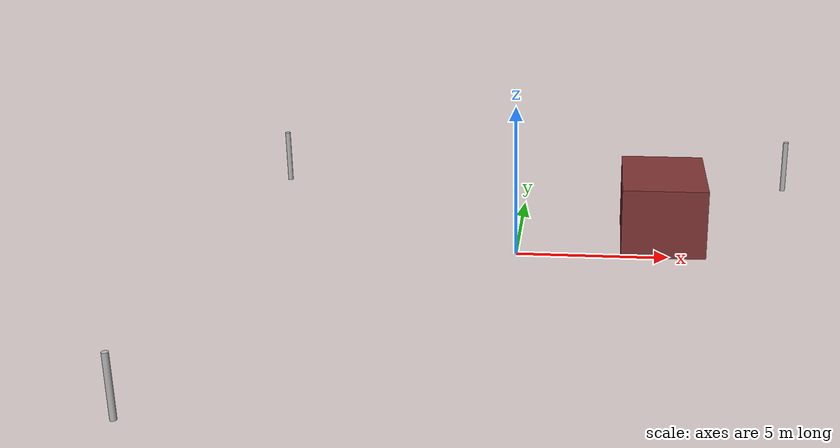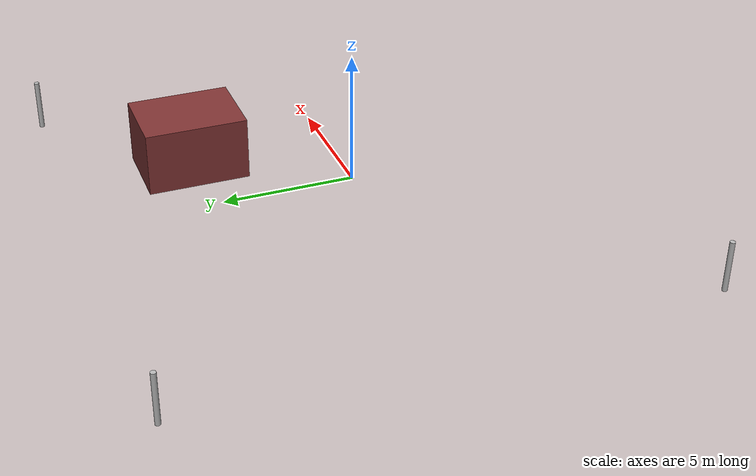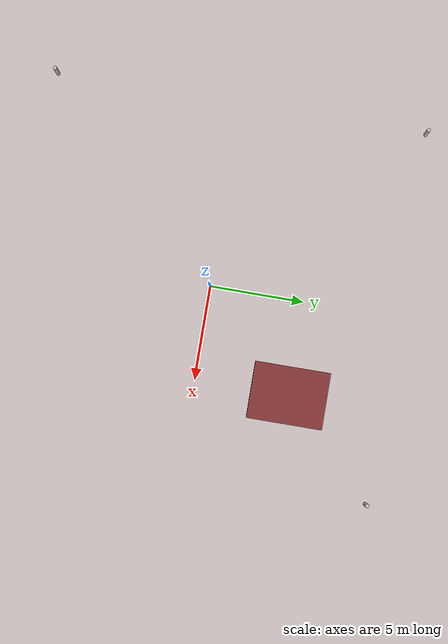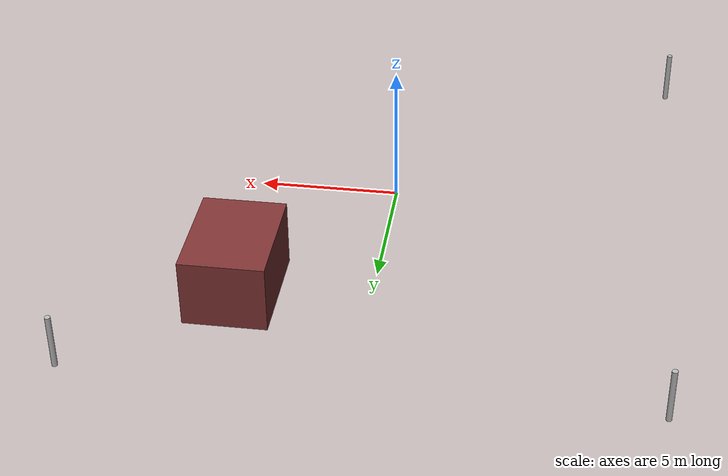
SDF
<?xml version="1.0" ?>
<sdf version="1.8">
  <world name="perimeter_site">

    <!-- 1. PHYSICS ENGINE CONFIGURATION            -->
    <physics name="fast_physics" type="ignored">
      <max_step_size>0.004</max_step_size>
      <real_time_factor>1.0</real_time_factor>
    </physics>

    <!-- 2. GAZEBO PLUGINS                          -->
    <plugin filename="gz-sim-physics-system" name="gz::sim::systems::Physics"/>
    <plugin filename="gz-sim-user-commands-system" name="gz::sim::systems::UserCommands"/>
    <plugin filename="gz-sim-scene-broadcaster-system" name="gz::sim::systems::SceneBroadcaster"/>
    <!-- The sensor system handles cameras, lidars, and IMUs -->
    <plugin filename="gz-sim-sensors-system" name="gz::sim::systems::Sensors">
      <render_engine>ogre2</render_engine>
    </plugin>

    <!-- 3. LIGHTING                                -->
    <light type="directional" name="sun">
      <cast_shadows>true</cast_shadows>
      <!-- Pose is X Y Z Roll Pitch Yaw. We put the sun 40m straight up -->
      <pose>0 0 40 0 0 0</pose>
      <!-- Diffuse dictates the color and intensity of the light reflecting off objects -->
      <diffuse>0.9 0.9 0.9 1</diffuse>
      <specular>0.1 0.1 0.1 1</specular>
    </light>

    <!-- 4. STATIC ENVIRONMENT MODELS               -->
    <model name="shed">
      <static>true</static>
      <pose>5 5 0 0 0 0</pose>
      <link name="link">
        <visual name="visual">
          <geometry><box><size>3 4 2.5</size></box></geometry>
          <material><ambient>0.5 0.2 0.2 1</ambient></material>
        </visual>
        <collision name="collision">
          <geometry><box><size>3 4 2.5</size></box></geometry>
        </collision>
      </link>
    </model>

    <model name="post_nw">
      <static>true</static>
      <pose>10 10 0 0 0 0</pose>
      <link name="link">
        <visual name="visual"><geometry><cylinder><radius>0.1</radius><length>2</length></cylinder></geometry></visual>
        <collision name="collision"><geometry><cylinder><radius>0.1</radius><length>2</length></cylinder></geometry></collision>
      </link>
    </model>

    <model name="post_sw">
      <static>true</static>
      <pose>-10 10 0 0 0 0</pose>
      <link name="link">
        <visual name="visual"><geometry><cylinder><radius>0.1</radius><length>2</length></cylinder></geometry></visual>
        <collision name="collision"><geometry><cylinder><radius>0.1</radius><length>2</length></cylinder></geometry></collision>
      </link>
    </model>

    <model name="post_se">
      <static>true</static>
      <pose>-10 -10 0 0 0 0</pose>
      <link name="link">
        <visual name="visual"><geometry><cylinder><radius>0.1</radius><length>2</length></cylinder></geometry></visual>
        <collision name="collision"><geometry><cylinder><radius>0.1</radius><length>2</length></cylinder></geometry></collision>
      </link>
    </model>

  </world>
</sdf>
